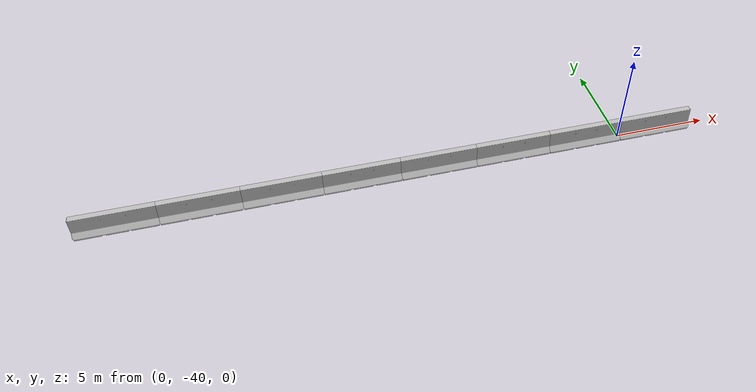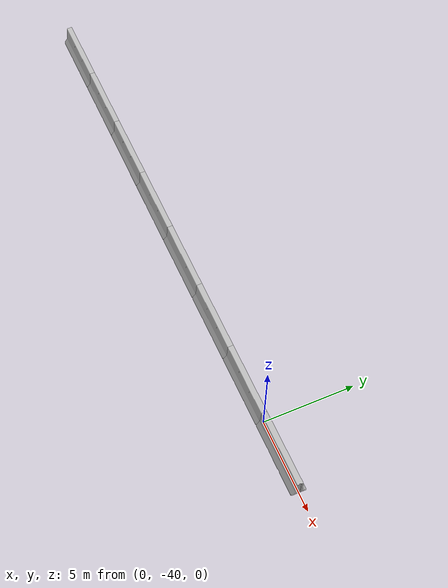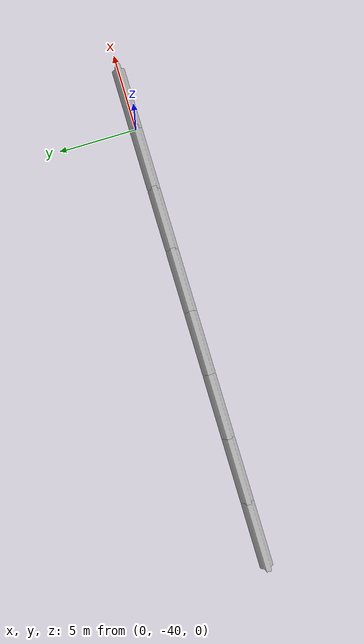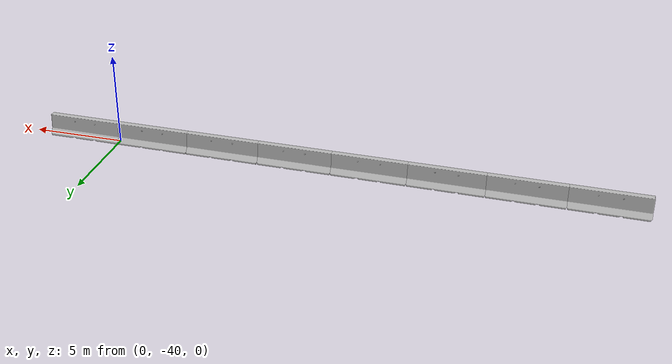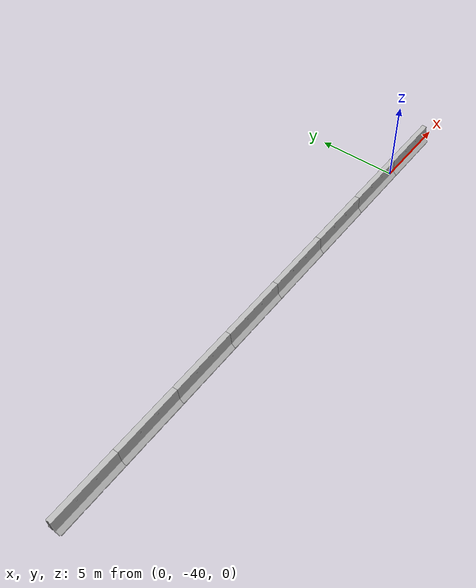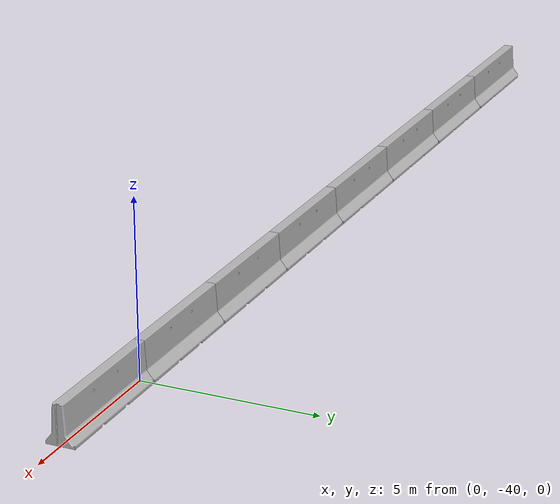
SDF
<sdf version="1.4">
 <world name="default">
  <include><uri>model://sun</uri></include>
  <model name="jersey_barrier_90">
   <pose>2 -40 0 0 0 0</pose>
   <static>1</static>
   <link name="link">
    <visual name="visual">
     <geometry><mesh><uri>model://jersey_barrier/meshes/jersey_barrier.dae</uri></mesh></geometry>
    </visual>
    <collision name="upright">
     <pose>0 0 0.5715 0 -0 0</pose>
     <geometry><box><size>4.06542 0.3063 1.143</size></box></geometry>
    </collision>
    <collision name="base">
     <pose>0 0 0.032258 0 -0 0</pose>
     <geometry><box><size>4.06542 0.8107 0.064516</size></box></geometry>
    </collision>
    <collision name="base2">
     <pose>0 0 0.1 0 -0 0</pose>
     <geometry><box><size>4.06542 0.65 0.1</size></box></geometry>
    </collision>
    <collision name="base3">
     <pose>0 0 0.2 0 -0 0</pose>
     <geometry><box><size>4.06542 0.5 0.1</size></box></geometry>
    </collision>
    <collision name="left-angle">
     <pose>0 -0.224 0.2401 0.9 -0 0</pose>
     <geometry><box><size>4.06542 0.5 0.064516</size></box></geometry>
    </collision>
    <collision name="right-angle">
     <pose>0 0.224 0.2401 -0.9 0 0</pose>
     <geometry><box><size>4.06542 0.5 0.064516</size></box></geometry>
    </collision>
    <velocity_decay><linear>0</linear><angular>0</angular></velocity_decay>
   </link>
   <pose>2.45495 0 0 0 -0 0</pose>
  </model>
  <model name="jersey_barrier_91">
   <pose>-2 -40 0 0 0 0</pose>
   <static>1</static>
   <link name="link">
    <visual name="visual">
     <geometry><mesh><uri>model://jersey_barrier/meshes/jersey_barrier.dae</uri></mesh></geometry>
    </visual>
    <collision name="upright">
     <pose>0 0 0.5715 0 -0 0</pose>
     <geometry><box><size>4.06542 0.3063 1.143</size></box></geometry>
    </collision>
    <collision name="base">
     <pose>0 0 0.032258 0 -0 0</pose>
     <geometry><box><size>4.06542 0.8107 0.064516</size></box></geometry>
    </collision>
    <collision name="base2">
     <pose>0 0 0.1 0 -0 0</pose>
     <geometry><box><size>4.06542 0.65 0.1</size></box></geometry>
    </collision>
    <collision name="base3">
     <pose>0 0 0.2 0 -0 0</pose>
     <geometry><box><size>4.06542 0.5 0.1</size></box></geometry>
    </collision>
    <collision name="left-angle">
     <pose>0 -0.224 0.2401 0.9 -0 0</pose>
     <geometry><box><size>4.06542 0.5 0.064516</size></box></geometry>
    </collision>
    <collision name="right-angle">
     <pose>0 0.224 0.2401 -0.9 0 0</pose>
     <geometry><box><size>4.06542 0.5 0.064516</size></box></geometry>
    </collision>
    <velocity_decay><linear>0</linear><angular>0</angular></velocity_decay>
   </link>
   <pose>2.45495 0 0 0 -0 0</pose>
  </model>
  <model name="jersey_barrier_92">
   <pose>-6 -40 0 0 0 0</pose>
   <static>1</static>
   <link name="link">
    <visual name="visual">
     <geometry><mesh><uri>model://jersey_barrier/meshes/jersey_barrier.dae</uri></mesh></geometry>
    </visual>
    <collision name="upright">
     <pose>0 0 0.5715 0 -0 0</pose>
     <geometry><box><size>4.06542 0.3063 1.143</size></box></geometry>
    </collision>
    <collision name="base">
     <pose>0 0 0.032258 0 -0 0</pose>
     <geometry><box><size>4.06542 0.8107 0.064516</size></box></geometry>
    </collision>
    <collision name="base2">
     <pose>0 0 0.1 0 -0 0</pose>
     <geometry><box><size>4.06542 0.65 0.1</size></box></geometry>
    </collision>
    <collision name="base3">
     <pose>0 0 0.2 0 -0 0</pose>
     <geometry><box><size>4.06542 0.5 0.1</size></box></geometry>
    </collision>
    <collision name="left-angle">
     <pose>0 -0.224 0.2401 0.9 -0 0</pose>
     <geometry><box><size>4.06542 0.5 0.064516</size></box></geometry>
    </collision>
    <collision name="right-angle">
     <pose>0 0.224 0.2401 -0.9 0 0</pose>
     <geometry><box><size>4.06542 0.5 0.064516</size></box></geometry>
    </collision>
    <velocity_decay><linear>0</linear><angular>0</angular></velocity_decay>
   </link>
   <pose>-10 -2 0 0 -0 0</pose>
  </model>
  <model name="jersey_barrier_93">
   <pose>-10 -40 0 0 0 0</pose>
   <static>1</static>
   <link name="link">
    <visual name="visual">
     <geometry><mesh><uri>model://jersey_barrier/meshes/jersey_barrier.dae</uri></mesh></geometry>
    </visual>
    <collision name="upright">
     <pose>0 0 0.5715 0 -0 0</pose>
     <geometry><box><size>4.06542 0.3063 1.143</size></box></geometry>
    </collision>
    <collision name="base">
     <pose>0 0 0.032258 0 -0 0</pose>
     <geometry><box><size>4.06542 0.8107 0.064516</size></box></geometry>
    </collision>
    <collision name="base2">
     <pose>0 0 0.1 0 -0 0</pose>
     <geometry><box><size>4.06542 0.65 0.1</size></box></geometry>
    </collision>
    <collision name="base3">
     <pose>0 0 0.2 0 -0 0</pose>
     <geometry><box><size>4.06542 0.5 0.1</size></box></geometry>
    </collision>
    <collision name="left-angle">
     <pose>0 -0.224 0.2401 0.9 -0 0</pose>
     <geometry><box><size>4.06542 0.5 0.064516</size></box></geometry>
    </collision>
    <collision name="right-angle">
     <pose>0 0.224 0.2401 -0.9 0 0</pose>
     <geometry><box><size>4.06542 0.5 0.064516</size></box></geometry>
    </collision>
    <velocity_decay><linear>0</linear><angular>0</angular></velocity_decay>
   </link>
   <pose>-9.55113 3 0 0 -0 0</pose>
  </model>
  <model name="jersey_barrier_94">
   <pose>-14 -40 0 0 0 0</pose>
   <static>1</static>
   <link name="link">
    <visual name="visual">
     <geometry><mesh><uri>model://jersey_barrier/meshes/jersey_barrier.dae</uri></mesh></geometry>
    </visual>
    <collision name="upright">
     <pose>0 0 0.5715 0 -0 0</pose>
     <geometry><box><size>4.06542 0.3063 1.143</size></box></geometry>
    </collision>
    <collision name="base">
     <pose>0 0 0.032258 0 -0 0</pose>
     <geometry><box><size>4.06542 0.8107 0.064516</size></box></geometry>
    </collision>
    <collision name="base2">
     <pose>0 0 0.1 0 -0 0</pose>
     <geometry><box><size>4.06542 0.65 0.1</size></box></geometry>
    </collision>
    <collision name="base3">
     <pose>0 0 0.2 0 -0 0</pose>
     <geometry><box><size>4.06542 0.5 0.1</size></box></geometry>
    </collision>
    <collision name="left-angle">
     <pose>0 -0.224 0.2401 0.9 -0 0</pose>
     <geometry><box><size>4.06542 0.5 0.064516</size></box></geometry>
    </collision>
    <collision name="right-angle">
     <pose>0 0.224 0.2401 -0.9 0 0</pose>
     <geometry><box><size>4.06542 0.5 0.064516</size></box></geometry>
    </collision>
    <velocity_decay><linear>0</linear><angular>0</angular></velocity_decay>
   </link>
   <pose>9 -8 0 0 -0 0</pose>
  </model>
  <model name="jersey_barrier_95">
   <pose>-18 -40 0 0 0 0</pose>
   <static>1</static>
   <link name="link">
    <visual name="visual">
     <geometry><mesh><uri>model://jersey_barrier/meshes/jersey_barrier.dae</uri></mesh></geometry>
    </visual>
    <collision name="upright">
     <pose>0 0 0.5715 0 -0 0</pose>
     <geometry><box><size>4.06542 0.3063 1.143</size></box></geometry>
    </collision>
    <collision name="base">
     <pose>0 0 0.032258 0 -0 0</pose>
     <geometry><box><size>4.06542 0.8107 0.064516</size></box></geometry>
    </collision>
    <collision name="base2">
     <pose>0 0 0.1 0 -0 0</pose>
     <geometry><box><size>4.06542 0.65 0.1</size></box></geometry>
    </collision>
    <collision name="base3">
     <pose>0 0 0.2 0 -0 0</pose>
     <geometry><box><size>4.06542 0.5 0.1</size></box></geometry>
    </collision>
    <collision name="left-angle">
     <pose>0 -0.224 0.2401 0.9 -0 0</pose>
     <geometry><box><size>4.06542 0.5 0.064516</size></box></geometry>
    </collision>
    <collision name="right-angle">
     <pose>0 0.224 0.2401 -0.9 0 0</pose>
     <geometry><box><size>4.06542 0.5 0.064516</size></box></geometry>
    </collision>
    <velocity_decay><linear>0</linear><angular>0</angular></velocity_decay>
   </link>
   <pose>10 7 0 0 -0 0</pose>
  </model>
  <model name="jersey_barrier_96">
   <pose>-22 -40 0 0 0 0</pose>
   <static>1</static>
   <link name="link">
    <visual name="visual">
     <geometry><mesh><uri>model://jersey_barrier/meshes/jersey_barrier.dae</uri></mesh></geometry>
    </visual>
    <collision name="upright">
     <pose>0 0 0.5715 0 -0 0</pose>
     <geometry><box><size>4.06542 0.3063 1.143</size></box></geometry>
    </collision>
    <collision name="base">
     <pose>0 0 0.032258 0 -0 0</pose>
     <geometry><box><size>4.06542 0.8107 0.064516</size></box></geometry>
    </collision>
    <collision name="base2">
     <pose>0 0 0.1 0 -0 0</pose>
     <geometry><box><size>4.06542 0.65 0.1</size></box></geometry>
    </collision>
    <collision name="base3">
     <pose>0 0 0.2 0 -0 0</pose>
     <geometry><box><size>4.06542 0.5 0.1</size></box></geometry>
    </collision>
    <collision name="left-angle">
     <pose>0 -0.224 0.2401 0.9 -0 0</pose>
     <geometry><box><size>4.06542 0.5 0.064516</size></box></geometry>
    </collision>
    <collision name="right-angle">
     <pose>0 0.224 0.2401 -0.9 0 0</pose>
     <geometry><box><size>4.06542 0.5 0.064516</size></box></geometry>
    </collision>
    <velocity_decay><linear>0</linear><angular>0</angular></velocity_decay>
   </link>
   <pose>-9 7.4858 0 0 -0 0</pose>
  </model>
  <model name="jersey_barrier_97">
   <pose>-26 -40 0 0 0 0</pose>
   <static>1</static>
   <link name="link">
    <visual name="visual">
     <geometry><mesh><uri>model://jersey_barrier/meshes/jersey_barrier.dae</uri></mesh></geometry>
    </visual>
    <collision name="upright">
     <pose>0 0 0.5715 0 -0 0</pose>
     <geometry><box><size>4.06542 0.3063 1.143</size></box></geometry>
    </collision>
    <collision name="base">
     <pose>0 0 0.032258 0 -0 0</pose>
     <geometry><box><size>4.06542 0.8107 0.064516</size></box></geometry>
    </collision>
    <collision name="base2">
     <pose>0 0 0.1 0 -0 0</pose>
     <geometry><box><size>4.06542 0.65 0.1</size></box></geometry>
    </collision>
    <collision name="base3">
     <pose>0 0 0.2 0 -0 0</pose>
     <geometry><box><size>4.06542 0.5 0.1</size></box></geometry>
    </collision>
    <collision name="left-angle">
     <pose>0 -0.224 0.2401 0.9 -0 0</pose>
     <geometry><box><size>4.06542 0.5 0.064516</size></box></geometry>
    </collision>
    <collision name="right-angle">
     <pose>0 0.224 0.2401 -0.9 0 0</pose>
     <geometry><box><size>4.06542 0.5 0.064516</size></box></geometry>
    </collision>
    <velocity_decay><linear>0</linear><angular>0</angular></velocity_decay>
   </link>
   <pose>2.45495 0 0 0 -0 0</pose>
  </model>
 </world>
</sdf>
